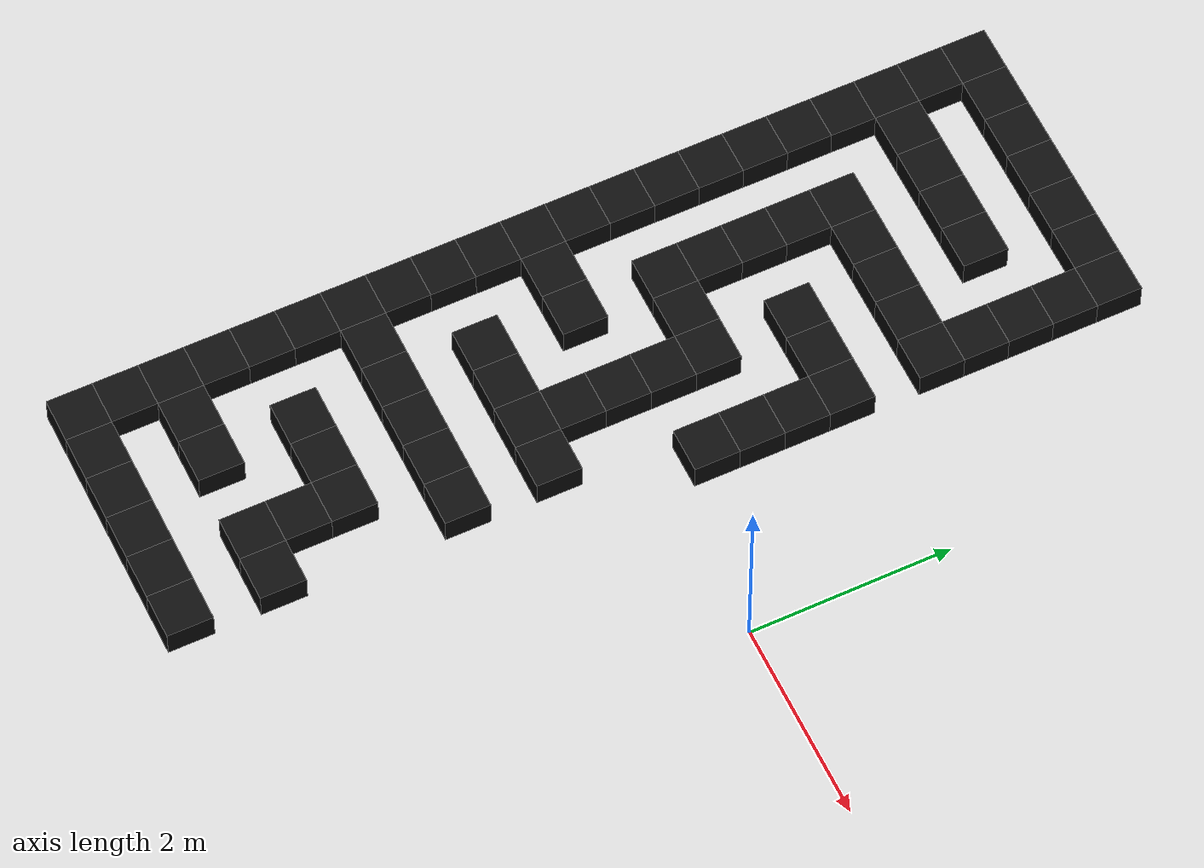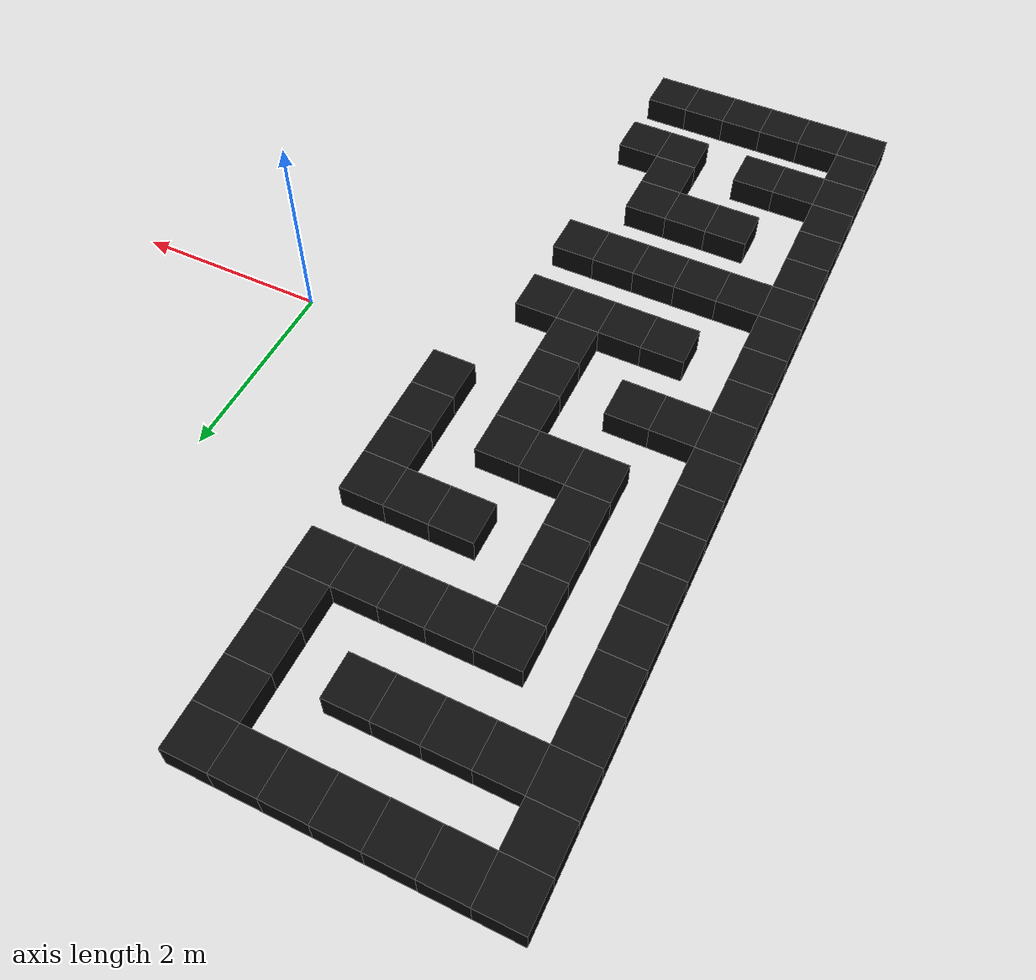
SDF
<sdf version="1.9">
 <world name="complex_maze_world">
  <model name="ground_plane">
   <static>true</static>
   <link name="link">
    <collision name="collision">
     <geometry><plane><normal>0 0 1</normal><size>30 30</size></plane></geometry>
    </collision>
    <visual name="visual">
     <geometry><plane><normal>0 0 1</normal><size>30 30</size></plane></geometry>
     <material><ambient>0.82 0.82 0.82 1</ambient><diffuse>0.82 0.82 0.82 1</diffuse></material>
    </visual>
   </link>
  </model>
  <model name="wall_0">
   <static>true</static>
   <pose>-4.500 4.500 0.140 0 0 0</pose>
   <link name="link">
    <collision name="collision"><geometry><box><size>0.450 0.450 0.280</size></box></geometry></collision>
    <visual name="visual">
     <geometry><box><size>0.450 0.450 0.280</size></box></geometry>
     <material><ambient>0.05 0.05 0.05 1</ambient><diffuse>0.05 0.05 0.05 1</diffuse></material>
    </visual>
   </link>
  </model>
  <model name="wall_1">
   <static>true</static>
   <pose>-4.050 4.500 0.140 0 0 0</pose>
   <link name="link">
    <collision name="collision"><geometry><box><size>0.450 0.450 0.280</size></box></geometry></collision>
    <visual name="visual">
     <geometry><box><size>0.450 0.450 0.280</size></box></geometry>
     <material><ambient>0.05 0.05 0.05 1</ambient><diffuse>0.05 0.05 0.05 1</diffuse></material>
    </visual>
   </link>
  </model>
  <model name="wall_2">
   <static>true</static>
   <pose>-3.600 4.500 0.140 0 0 0</pose>
   <link name="link">
    <collision name="collision"><geometry><box><size>0.450 0.450 0.280</size></box></geometry></collision>
    <visual name="visual">
     <geometry><box><size>0.450 0.450 0.280</size></box></geometry>
     <material><ambient>0.05 0.05 0.05 1</ambient><diffuse>0.05 0.05 0.05 1</diffuse></material>
    </visual>
   </link>
  </model>
  <model name="wall_3">
   <static>true</static>
   <pose>-3.150 4.500 0.140 0 0 0</pose>
   <link name="link">
    <collision name="collision"><geometry><box><size>0.450 0.450 0.280</size></box></geometry></collision>
    <visual name="visual">
     <geometry><box><size>0.450 0.450 0.280</size></box></geometry>
     <material><ambient>0.05 0.05 0.05 1</ambient><diffuse>0.05 0.05 0.05 1</diffuse></material>
    </visual>
   </link>
  </model>
  <model name="wall_4">
   <static>true</static>
   <pose>-2.700 4.500 0.140 0 0 0</pose>
   <link name="link">
    <collision name="collision"><geometry><box><size>0.450 0.450 0.280</size></box></geometry></collision>
    <visual name="visual">
     <geometry><box><size>0.450 0.450 0.280</size></box></geometry>
     <material><ambient>0.05 0.05 0.05 1</ambient><diffuse>0.05 0.05 0.05 1</diffuse></material>
    </visual>
   </link>
  </model>
  <model name="wall_5">
   <static>true</static>
   <pose>-2.250 4.500 0.140 0 0 0</pose>
   <link name="link">
    <collision name="collision"><geometry><box><size>0.450 0.450 0.280</size></box></geometry></collision>
    <visual name="visual">
     <geometry><box><size>0.450 0.450 0.280</size></box></geometry>
     <material><ambient>0.05 0.05 0.05 1</ambient><diffuse>0.05 0.05 0.05 1</diffuse></material>
    </visual>
   </link>
  </model>
  <model name="wall_6">
   <static>true</static>
   <pose>-1.800 4.500 0.140 0 0 0</pose>
   <link name="link">
    <collision name="collision"><geometry><box><size>0.450 0.450 0.280</size></box></geometry></collision>
    <visual name="visual">
     <geometry><box><size>0.450 0.450 0.280</size></box></geometry>
     <material><ambient>0.05 0.05 0.05 1</ambient><diffuse>0.05 0.05 0.05 1</diffuse></material>
    </visual>
   </link>
  </model>
  <model name="wall_21">
   <static>true</static>
   <pose>-4.500 4.050 0.140 0 0 0</pose>
   <link name="link">
    <collision name="collision"><geometry><box><size>0.450 0.450 0.280</size></box></geometry></collision>
    <visual name="visual">
     <geometry><box><size>0.450 0.450 0.280</size></box></geometry>
     <material><ambient>0.05 0.05 0.05 1</ambient><diffuse>0.05 0.05 0.05 1</diffuse></material>
    </visual>
   </link>
  </model>
  <model name="wall_22">
   <static>true</static>
   <pose>-1.800 4.050 0.140 0 0 0</pose>
   <link name="link">
    <collision name="collision"><geometry><box><size>0.450 0.450 0.280</size></box></geometry></collision>
    <visual name="visual">
     <geometry><box><size>0.450 0.450 0.280</size></box></geometry>
     <material><ambient>0.05 0.05 0.05 1</ambient><diffuse>0.05 0.05 0.05 1</diffuse></material>
    </visual>
   </link>
  </model>
  <model name="wall_24">
   <static>true</static>
   <pose>-4.500 3.600 0.140 0 0 0</pose>
   <link name="link">
    <collision name="collision"><geometry><box><size>0.450 0.450 0.280</size></box></geometry></collision>
    <visual name="visual">
     <geometry><box><size>0.450 0.450 0.280</size></box></geometry>
     <material><ambient>0.05 0.05 0.05 1</ambient><diffuse>0.05 0.05 0.05 1</diffuse></material>
    </visual>
   </link>
  </model>
  <model name="wall_25">
   <static>true</static>
   <pose>-4.050 3.600 0.140 0 0 0</pose>
   <link name="link">
    <collision name="collision"><geometry><box><size>0.450 0.450 0.280</size></box></geometry></collision>
    <visual name="visual">
     <geometry><box><size>0.450 0.450 0.280</size></box></geometry>
     <material><ambient>0.05 0.05 0.05 1</ambient><diffuse>0.05 0.05 0.05 1</diffuse></material>
    </visual>
   </link>
  </model>
  <model name="wall_26">
   <static>true</static>
   <pose>-3.600 3.600 0.140 0 0 0</pose>
   <link name="link">
    <collision name="collision"><geometry><box><size>0.450 0.450 0.280</size></box></geometry></collision>
    <visual name="visual">
     <geometry><box><size>0.450 0.450 0.280</size></box></geometry>
     <material><ambient>0.05 0.05 0.05 1</ambient><diffuse>0.05 0.05 0.05 1</diffuse></material>
    </visual>
   </link>
  </model>
  <model name="wall_27">
   <static>true</static>
   <pose>-3.150 3.600 0.140 0 0 0</pose>
   <link name="link">
    <collision name="collision"><geometry><box><size>0.450 0.450 0.280</size></box></geometry></collision>
    <visual name="visual">
     <geometry><box><size>0.450 0.450 0.280</size></box></geometry>
     <material><ambient>0.05 0.05 0.05 1</ambient><diffuse>0.05 0.05 0.05 1</diffuse></material>
    </visual>
   </link>
  </model>
  <model name="wall_28">
   <static>true</static>
   <pose>-2.700 3.600 0.140 0 0 0</pose>
   <link name="link">
    <collision name="collision"><geometry><box><size>0.450 0.450 0.280</size></box></geometry></collision>
    <visual name="visual">
     <geometry><box><size>0.450 0.450 0.280</size></box></geometry>
     <material><ambient>0.05 0.05 0.05 1</ambient><diffuse>0.05 0.05 0.05 1</diffuse></material>
    </visual>
   </link>
  </model>
  <model name="wall_29">
   <static>true</static>
   <pose>-1.800 3.600 0.140 0 0 0</pose>
   <link name="link">
    <collision name="collision"><geometry><box><size>0.450 0.450 0.280</size></box></geometry></collision>
    <visual name="visual">
     <geometry><box><size>0.450 0.450 0.280</size></box></geometry>
     <material><ambient>0.05 0.05 0.05 1</ambient><diffuse>0.05 0.05 0.05 1</diffuse></material>
    </visual>
   </link>
  </model>
  <model name="wall_41">
   <static>true</static>
   <pose>-4.500 3.150 0.140 0 0 0</pose>
   <link name="link">
    <collision name="collision"><geometry><box><size>0.450 0.450 0.280</size></box></geometry></collision>
    <visual name="visual">
     <geometry><box><size>0.450 0.450 0.280</size></box></geometry>
     <material><ambient>0.05 0.05 0.05 1</ambient><diffuse>0.05 0.05 0.05 1</diffuse></material>
    </visual>
   </link>
  </model>
  <model name="wall_42">
   <static>true</static>
   <pose>-1.800 3.150 0.140 0 0 0</pose>
   <link name="link">
    <collision name="collision"><geometry><box><size>0.450 0.450 0.280</size></box></geometry></collision>
    <visual name="visual">
     <geometry><box><size>0.450 0.450 0.280</size></box></geometry>
     <material><ambient>0.05 0.05 0.05 1</ambient><diffuse>0.05 0.05 0.05 1</diffuse></material>
    </visual>
   </link>
  </model>
  <model name="wall_46">
   <static>true</static>
   <pose>-4.500 2.700 0.140 0 0 0</pose>
   <link name="link">
    <collision name="collision"><geometry><box><size>0.450 0.450 0.280</size></box></geometry></collision>
    <visual name="visual">
     <geometry><box><size>0.450 0.450 0.280</size></box></geometry>
     <material><ambient>0.05 0.05 0.05 1</ambient><diffuse>0.05 0.05 0.05 1</diffuse></material>
    </visual>
   </link>
  </model>
  <model name="wall_47">
   <static>true</static>
   <pose>-3.600 2.700 0.140 0 0 0</pose>
   <link name="link">
    <collision name="collision"><geometry><box><size>0.450 0.450 0.280</size></box></geometry></collision>
    <visual name="visual">
     <geometry><box><size>0.450 0.450 0.280</size></box></geometry>
     <material><ambient>0.05 0.05 0.05 1</ambient><diffuse>0.05 0.05 0.05 1</diffuse></material>
    </visual>
   </link>
  </model>
  <model name="wall_48">
   <static>true</static>
   <pose>-3.150 2.700 0.140 0 0 0</pose>
   <link name="link">
    <collision name="collision"><geometry><box><size>0.450 0.450 0.280</size></box></geometry></collision>
    <visual name="visual">
     <geometry><box><size>0.450 0.450 0.280</size></box></geometry>
     <material><ambient>0.05 0.05 0.05 1</ambient><diffuse>0.05 0.05 0.05 1</diffuse></material>
    </visual>
   </link>
  </model>
  <model name="wall_49">
   <static>true</static>
   <pose>-2.700 2.700 0.140 0 0 0</pose>
   <link name="link">
    <collision name="collision"><geometry><box><size>0.450 0.450 0.280</size></box></geometry></collision>
    <visual name="visual">
     <geometry><box><size>0.450 0.450 0.280</size></box></geometry>
     <material><ambient>0.05 0.05 0.05 1</ambient><diffuse>0.05 0.05 0.05 1</diffuse></material>
    </visual>
   </link>
  </model>
  <model name="wall_50">
   <static>true</static>
   <pose>-2.250 2.700 0.140 0 0 0</pose>
   <link name="link">
    <collision name="collision"><geometry><box><size>0.450 0.450 0.280</size></box></geometry></collision>
    <visual name="visual">
     <geometry><box><size>0.450 0.450 0.280</size></box></geometry>
     <material><ambient>0.05 0.05 0.05 1</ambient><diffuse>0.05 0.05 0.05 1</diffuse></material>
    </visual>
   </link>
  </model>
  <model name="wall_51">
   <static>true</static>
   <pose>-1.800 2.700 0.140 0 0 0</pose>
   <link name="link">
    <collision name="collision"><geometry><box><size>0.450 0.450 0.280</size></box></geometry></collision>
    <visual name="visual">
     <geometry><box><size>0.450 0.450 0.280</size></box></geometry>
     <material><ambient>0.05 0.05 0.05 1</ambient><diffuse>0.05 0.05 0.05 1</diffuse></material>
    </visual>
   </link>
  </model>
  <model name="wall_61">
   <static>true</static>
   <pose>-4.500 2.250 0.140 0 0 0</pose>
   <link name="link">
    <collision name="collision"><geometry><box><size>0.450 0.450 0.280</size></box></geometry></collision>
    <visual name="visual">
     <geometry><box><size>0.450 0.450 0.280</size></box></geometry>
     <material><ambient>0.05 0.05 0.05 1</ambient><diffuse>0.05 0.05 0.05 1</diffuse></material>
    </visual>
   </link>
  </model>
  <model name="wall_62">
   <static>true</static>
   <pose>-3.600 2.250 0.140 0 0 0</pose>
   <link name="link">
    <collision name="collision"><geometry><box><size>0.450 0.450 0.280</size></box></geometry></collision>
    <visual name="visual">
     <geometry><box><size>0.450 0.450 0.280</size></box></geometry>
     <material><ambient>0.05 0.05 0.05 1</ambient><diffuse>0.05 0.05 0.05 1</diffuse></material>
    </visual>
   </link>
  </model>
  <model name="wall_68">
   <static>true</static>
   <pose>-4.500 1.800 0.140 0 0 0</pose>
   <link name="link">
    <collision name="collision"><geometry><box><size>0.450 0.450 0.280</size></box></geometry></collision>
    <visual name="visual">
     <geometry><box><size>0.450 0.450 0.280</size></box></geometry>
     <material><ambient>0.05 0.05 0.05 1</ambient><diffuse>0.05 0.05 0.05 1</diffuse></material>
    </visual>
   </link>
  </model>
  <model name="wall_69">
   <static>true</static>
   <pose>-3.600 1.800 0.140 0 0 0</pose>
   <link name="link">
    <collision name="collision"><geometry><box><size>0.450 0.450 0.280</size></box></geometry></collision>
    <visual name="visual">
     <geometry><box><size>0.450 0.450 0.280</size></box></geometry>
     <material><ambient>0.05 0.05 0.05 1</ambient><diffuse>0.05 0.05 0.05 1</diffuse></material>
    </visual>
   </link>
  </model>
  <model name="wall_70">
   <static>true</static>
   <pose>-2.700 1.800 0.140 0 0 0</pose>
   <link name="link">
    <collision name="collision"><geometry><box><size>0.450 0.450 0.280</size></box></geometry></collision>
    <visual name="visual">
     <geometry><box><size>0.450 0.450 0.280</size></box></geometry>
     <material><ambient>0.05 0.05 0.05 1</ambient><diffuse>0.05 0.05 0.05 1</diffuse></material>
    </visual>
   </link>
  </model>
  <model name="wall_71">
   <static>true</static>
   <pose>-2.250 1.800 0.140 0 0 0</pose>
   <link name="link">
    <collision name="collision"><geometry><box><size>0.450 0.450 0.280</size></box></geometry></collision>
    <visual name="visual">
     <geometry><box><size>0.450 0.450 0.280</size></box></geometry>
     <material><ambient>0.05 0.05 0.05 1</ambient><diffuse>0.05 0.05 0.05 1</diffuse></material>
    </visual>
   </link>
  </model>
  <model name="wall_72">
   <static>true</static>
   <pose>-1.800 1.800 0.140 0 0 0</pose>
   <link name="link">
    <collision name="collision"><geometry><box><size>0.450 0.450 0.280</size></box></geometry></collision>
    <visual name="visual">
     <geometry><box><size>0.450 0.450 0.280</size></box></geometry>
     <material><ambient>0.05 0.05 0.05 1</ambient><diffuse>0.05 0.05 0.05 1</diffuse></material>
    </visual>
   </link>
  </model>
  <model name="wall_80">
   <static>true</static>
   <pose>-4.500 1.350 0.140 0 0 0</pose>
   <link name="link">
    <collision name="collision"><geometry><box><size>0.450 0.450 0.280</size></box></geometry></collision>
    <visual name="visual">
     <geometry><box><size>0.450 0.450 0.280</size></box></geometry>
     <material><ambient>0.05 0.05 0.05 1</ambient><diffuse>0.05 0.05 0.05 1</diffuse></material>
    </visual>
   </link>
  </model>
  <model name="wall_81">
   <static>true</static>
   <pose>-3.600 1.350 0.140 0 0 0</pose>
   <link name="link">
    <collision name="collision"><geometry><box><size>0.450 0.450 0.280</size></box></geometry></collision>
    <visual name="visual">
     <geometry><box><size>0.450 0.450 0.280</size></box></geometry>
     <material><ambient>0.05 0.05 0.05 1</ambient><diffuse>0.05 0.05 0.05 1</diffuse></material>
    </visual>
   </link>
  </model>
  <model name="wall_82">
   <static>true</static>
   <pose>-1.800 1.350 0.140 0 0 0</pose>
   <link name="link">
    <collision name="collision"><geometry><box><size>0.450 0.450 0.280</size></box></geometry></collision>
    <visual name="visual">
     <geometry><box><size>0.450 0.450 0.280</size></box></geometry>
     <material><ambient>0.05 0.05 0.05 1</ambient><diffuse>0.05 0.05 0.05 1</diffuse></material>
    </visual>
   </link>
  </model>
  <model name="wall_85">
   <static>true</static>
   <pose>-4.500 0.900 0.140 0 0 0</pose>
   <link name="link">
    <collision name="collision"><geometry><box><size>0.450 0.450 0.280</size></box></geometry></collision>
    <visual name="visual">
     <geometry><box><size>0.450 0.450 0.280</size></box></geometry>
     <material><ambient>0.05 0.05 0.05 1</ambient><diffuse>0.05 0.05 0.05 1</diffuse></material>
    </visual>
   </link>
  </model>
  <model name="wall_86">
   <static>true</static>
   <pose>-3.600 0.900 0.140 0 0 0</pose>
   <link name="link">
    <collision name="collision"><geometry><box><size>0.450 0.450 0.280</size></box></geometry></collision>
    <visual name="visual">
     <geometry><box><size>0.450 0.450 0.280</size></box></geometry>
     <material><ambient>0.05 0.05 0.05 1</ambient><diffuse>0.05 0.05 0.05 1</diffuse></material>
    </visual>
   </link>
  </model>
  <model name="wall_87">
   <static>true</static>
   <pose>-3.150 0.900 0.140 0 0 0</pose>
   <link name="link">
    <collision name="collision"><geometry><box><size>0.450 0.450 0.280</size></box></geometry></collision>
    <visual name="visual">
     <geometry><box><size>0.450 0.450 0.280</size></box></geometry>
     <material><ambient>0.05 0.05 0.05 1</ambient><diffuse>0.05 0.05 0.05 1</diffuse></material>
    </visual>
   </link>
  </model>
  <model name="wall_88">
   <static>true</static>
   <pose>-2.700 0.900 0.140 0 0 0</pose>
   <link name="link">
    <collision name="collision"><geometry><box><size>0.450 0.450 0.280</size></box></geometry></collision>
    <visual name="visual">
     <geometry><box><size>0.450 0.450 0.280</size></box></geometry>
     <material><ambient>0.05 0.05 0.05 1</ambient><diffuse>0.05 0.05 0.05 1</diffuse></material>
    </visual>
   </link>
  </model>
  <model name="wall_89">
   <static>true</static>
   <pose>-1.800 0.900 0.140 0 0 0</pose>
   <link name="link">
    <collision name="collision"><geometry><box><size>0.450 0.450 0.280</size></box></geometry></collision>
    <visual name="visual">
     <geometry><box><size>0.450 0.450 0.280</size></box></geometry>
     <material><ambient>0.05 0.05 0.05 1</ambient><diffuse>0.05 0.05 0.05 1</diffuse></material>
    </visual>
   </link>
  </model>
  <model name="wall_101">
   <static>true</static>
   <pose>-4.500 0.450 0.140 0 0 0</pose>
   <link name="link">
    <collision name="collision"><geometry><box><size>0.450 0.450 0.280</size></box></geometry></collision>
    <visual name="visual">
     <geometry><box><size>0.450 0.450 0.280</size></box></geometry>
     <material><ambient>0.05 0.05 0.05 1</ambient><diffuse>0.05 0.05 0.05 1</diffuse></material>
    </visual>
   </link>
  </model>
  <model name="wall_102">
   <static>true</static>
   <pose>-2.700 0.450 0.140 0 0 0</pose>
   <link name="link">
    <collision name="collision"><geometry><box><size>0.450 0.450 0.280</size></box></geometry></collision>
    <visual name="visual">
     <geometry><box><size>0.450 0.450 0.280</size></box></geometry>
     <material><ambient>0.05 0.05 0.05 1</ambient><diffuse>0.05 0.05 0.05 1</diffuse></material>
    </visual>
   </link>
  </model>
  <model name="wall_103">
   <static>true</static>
   <pose>-1.800 0.450 0.140 0 0 0</pose>
   <link name="link">
    <collision name="collision"><geometry><box><size>0.450 0.450 0.280</size></box></geometry></collision>
    <visual name="visual">
     <geometry><box><size>0.450 0.450 0.280</size></box></geometry>
     <material><ambient>0.05 0.05 0.05 1</ambient><diffuse>0.05 0.05 0.05 1</diffuse></material>
    </visual>
   </link>
  </model>
  <model name="wall_107">
   <static>true</static>
   <pose>-4.500 0.000 0.140 0 0 0</pose>
   <link name="link">
    <collision name="collision"><geometry><box><size>0.450 0.450 0.280</size></box></geometry></collision>
    <visual name="visual">
     <geometry><box><size>0.450 0.450 0.280</size></box></geometry>
     <material><ambient>0.05 0.05 0.05 1</ambient><diffuse>0.05 0.05 0.05 1</diffuse></material>
    </visual>
   </link>
  </model>
  <model name="wall_108">
   <static>true</static>
   <pose>-4.050 0.000 0.140 0 0 0</pose>
   <link name="link">
    <collision name="collision"><geometry><box><size>0.450 0.450 0.280</size></box></geometry></collision>
    <visual name="visual">
     <geometry><box><size>0.450 0.450 0.280</size></box></geometry>
     <material><ambient>0.05 0.05 0.05 1</ambient><diffuse>0.05 0.05 0.05 1</diffuse></material>
    </visual>
   </link>
  </model>
  <model name="wall_109">
   <static>true</static>
   <pose>-3.600 0.000 0.140 0 0 0</pose>
   <link name="link">
    <collision name="collision"><geometry><box><size>0.450 0.450 0.280</size></box></geometry></collision>
    <visual name="visual">
     <geometry><box><size>0.450 0.450 0.280</size></box></geometry>
     <material><ambient>0.05 0.05 0.05 1</ambient><diffuse>0.05 0.05 0.05 1</diffuse></material>
    </visual>
   </link>
  </model>
  <model name="wall_110">
   <static>true</static>
   <pose>-2.700 0.000 0.140 0 0 0</pose>
   <link name="link">
    <collision name="collision"><geometry><box><size>0.450 0.450 0.280</size></box></geometry></collision>
    <visual name="visual">
     <geometry><box><size>0.450 0.450 0.280</size></box></geometry>
     <material><ambient>0.05 0.05 0.05 1</ambient><diffuse>0.05 0.05 0.05 1</diffuse></material>
    </visual>
   </link>
  </model>
  <model name="wall_123">
   <static>true</static>
   <pose>-4.500 -0.450 0.140 0 0 0</pose>
   <link name="link">
    <collision name="collision"><geometry><box><size>0.450 0.450 0.280</size></box></geometry></collision>
    <visual name="visual">
     <geometry><box><size>0.450 0.450 0.280</size></box></geometry>
     <material><ambient>0.05 0.05 0.05 1</ambient><diffuse>0.05 0.05 0.05 1</diffuse></material>
    </visual>
   </link>
  </model>
  <model name="wall_124">
   <static>true</static>
   <pose>-2.700 -0.450 0.140 0 0 0</pose>
   <link name="link">
    <collision name="collision"><geometry><box><size>0.450 0.450 0.280</size></box></geometry></collision>
    <visual name="visual">
     <geometry><box><size>0.450 0.450 0.280</size></box></geometry>
     <material><ambient>0.05 0.05 0.05 1</ambient><diffuse>0.05 0.05 0.05 1</diffuse></material>
    </visual>
   </link>
  </model>
  <model name="wall_129">
   <static>true</static>
   <pose>-4.500 -0.900 0.140 0 0 0</pose>
   <link name="link">
    <collision name="collision"><geometry><box><size>0.450 0.450 0.280</size></box></geometry></collision>
    <visual name="visual">
     <geometry><box><size>0.450 0.450 0.280</size></box></geometry>
     <material><ambient>0.05 0.05 0.05 1</ambient><diffuse>0.05 0.05 0.05 1</diffuse></material>
    </visual>
   </link>
  </model>
  <model name="wall_130">
   <static>true</static>
   <pose>-3.600 -0.900 0.140 0 0 0</pose>
   <link name="link">
    <collision name="collision"><geometry><box><size>0.450 0.450 0.280</size></box></geometry></collision>
    <visual name="visual">
     <geometry><box><size>0.450 0.450 0.280</size></box></geometry>
     <material><ambient>0.05 0.05 0.05 1</ambient><diffuse>0.05 0.05 0.05 1</diffuse></material>
    </visual>
   </link>
  </model>
  <model name="wall_131">
   <static>true</static>
   <pose>-3.150 -0.900 0.140 0 0 0</pose>
   <link name="link">
    <collision name="collision"><geometry><box><size>0.450 0.450 0.280</size></box></geometry></collision>
    <visual name="visual">
     <geometry><box><size>0.450 0.450 0.280</size></box></geometry>
     <material><ambient>0.05 0.05 0.05 1</ambient><diffuse>0.05 0.05 0.05 1</diffuse></material>
    </visual>
   </link>
  </model>
  <model name="wall_132">
   <static>true</static>
   <pose>-2.700 -0.900 0.140 0 0 0</pose>
   <link name="link">
    <collision name="collision"><geometry><box><size>0.450 0.450 0.280</size></box></geometry></collision>
    <visual name="visual">
     <geometry><box><size>0.450 0.450 0.280</size></box></geometry>
     <material><ambient>0.05 0.05 0.05 1</ambient><diffuse>0.05 0.05 0.05 1</diffuse></material>
    </visual>
   </link>
  </model>
  <model name="wall_133">
   <static>true</static>
   <pose>-2.250 -0.900 0.140 0 0 0</pose>
   <link name="link">
    <collision name="collision"><geometry><box><size>0.450 0.450 0.280</size></box></geometry></collision>
    <visual name="visual">
     <geometry><box><size>0.450 0.450 0.280</size></box></geometry>
     <material><ambient>0.05 0.05 0.05 1</ambient><diffuse>0.05 0.05 0.05 1</diffuse></material>
    </visual>
   </link>
  </model>
  <model name="wall_145">
   <static>true</static>
   <pose>-4.500 -1.350 0.140 0 0 0</pose>
   <link name="link">
    <collision name="collision"><geometry><box><size>0.450 0.450 0.280</size></box></geometry></collision>
    <visual name="visual">
     <geometry><box><size>0.450 0.450 0.280</size></box></geometry>
     <material><ambient>0.05 0.05 0.05 1</ambient><diffuse>0.05 0.05 0.05 1</diffuse></material>
    </visual>
   </link>
  </model>
  <model name="wall_150">
   <static>true</static>
   <pose>-4.500 -1.800 0.140 0 0 0</pose>
   <link name="link">
    <collision name="collision"><geometry><box><size>0.450 0.450 0.280</size></box></geometry></collision>
    <visual name="visual">
     <geometry><box><size>0.450 0.450 0.280</size></box></geometry>
     <material><ambient>0.05 0.05 0.05 1</ambient><diffuse>0.05 0.05 0.05 1</diffuse></material>
    </visual>
   </link>
  </model>
  <model name="wall_151">
   <static>true</static>
   <pose>-4.050 -1.800 0.140 0 0 0</pose>
   <link name="link">
    <collision name="collision"><geometry><box><size>0.450 0.450 0.280</size></box></geometry></collision>
    <visual name="visual">
     <geometry><box><size>0.450 0.450 0.280</size></box></geometry>
     <material><ambient>0.05 0.05 0.05 1</ambient><diffuse>0.05 0.05 0.05 1</diffuse></material>
    </visual>
   </link>
  </model>
  <model name="wall_152">
   <static>true</static>
   <pose>-3.600 -1.800 0.140 0 0 0</pose>
   <link name="link">
    <collision name="collision"><geometry><box><size>0.450 0.450 0.280</size></box></geometry></collision>
    <visual name="visual">
     <geometry><box><size>0.450 0.450 0.280</size></box></geometry>
     <material><ambient>0.05 0.05 0.05 1</ambient><diffuse>0.05 0.05 0.05 1</diffuse></material>
    </visual>
   </link>
  </model>
  <model name="wall_153">
   <static>true</static>
   <pose>-3.150 -1.800 0.140 0 0 0</pose>
   <link name="link">
    <collision name="collision"><geometry><box><size>0.450 0.450 0.280</size></box></geometry></collision>
    <visual name="visual">
     <geometry><box><size>0.450 0.450 0.280</size></box></geometry>
     <material><ambient>0.05 0.05 0.05 1</ambient><diffuse>0.05 0.05 0.05 1</diffuse></material>
    </visual>
   </link>
  </model>
  <model name="wall_154">
   <static>true</static>
   <pose>-2.700 -1.800 0.140 0 0 0</pose>
   <link name="link">
    <collision name="collision"><geometry><box><size>0.450 0.450 0.280</size></box></geometry></collision>
    <visual name="visual">
     <geometry><box><size>0.450 0.450 0.280</size></box></geometry>
     <material><ambient>0.05 0.05 0.05 1</ambient><diffuse>0.05 0.05 0.05 1</diffuse></material>
    </visual>
   </link>
  </model>
  <model name="wall_155">
   <static>true</static>
   <pose>-2.250 -1.800 0.140 0 0 0</pose>
   <link name="link">
    <collision name="collision"><geometry><box><size>0.450 0.450 0.280</size></box></geometry></collision>
    <visual name="visual">
     <geometry><box><size>0.450 0.450 0.280</size></box></geometry>
     <material><ambient>0.05 0.05 0.05 1</ambient><diffuse>0.05 0.05 0.05 1</diffuse></material>
    </visual>
   </link>
  </model>
  <model name="wall_168">
   <static>true</static>
   <pose>-4.500 -2.250 0.140 0 0 0</pose>
   <link name="link">
    <collision name="collision"><geometry><box><size>0.450 0.450 0.280</size></box></geometry></collision>
    <visual name="visual">
     <geometry><box><size>0.450 0.450 0.280</size></box></geometry>
     <material><ambient>0.05 0.05 0.05 1</ambient><diffuse>0.05 0.05 0.05 1</diffuse></material>
    </visual>
   </link>
  </model>
  <model name="wall_172">
   <static>true</static>
   <pose>-4.500 -2.700 0.140 0 0 0</pose>
   <link name="link">
    <collision name="collision"><geometry><box><size>0.450 0.450 0.280</size></box></geometry></collision>
    <visual name="visual">
     <geometry><box><size>0.450 0.450 0.280</size></box></geometry>
     <material><ambient>0.05 0.05 0.05 1</ambient><diffuse>0.05 0.05 0.05 1</diffuse></material>
    </visual>
   </link>
  </model>
  <model name="wall_173">
   <static>true</static>
   <pose>-3.600 -2.700 0.140 0 0 0</pose>
   <link name="link">
    <collision name="collision"><geometry><box><size>0.450 0.450 0.280</size></box></geometry></collision>
    <visual name="visual">
     <geometry><box><size>0.450 0.450 0.280</size></box></geometry>
     <material><ambient>0.05 0.05 0.05 1</ambient><diffuse>0.05 0.05 0.05 1</diffuse></material>
    </visual>
   </link>
  </model>
  <model name="wall_174">
   <static>true</static>
   <pose>-3.150 -2.700 0.140 0 0 0</pose>
   <link name="link">
    <collision name="collision"><geometry><box><size>0.450 0.450 0.280</size></box></geometry></collision>
    <visual name="visual">
     <geometry><box><size>0.450 0.450 0.280</size></box></geometry>
     <material><ambient>0.05 0.05 0.05 1</ambient><diffuse>0.05 0.05 0.05 1</diffuse></material>
    </visual>
   </link>
  </model>
  <model name="wall_175">
   <static>true</static>
   <pose>-2.700 -2.700 0.140 0 0 0</pose>
   <link name="link">
    <collision name="collision"><geometry><box><size>0.450 0.450 0.280</size></box></geometry></collision>
    <visual name="visual">
     <geometry><box><size>0.450 0.450 0.280</size></box></geometry>
     <material><ambient>0.05 0.05 0.05 1</ambient><diffuse>0.05 0.05 0.05 1</diffuse></material>
    </visual>
   </link>
  </model>
  <model name="wall_189">
   <static>true</static>
   <pose>-4.500 -3.150 0.140 0 0 0</pose>
   <link name="link">
    <collision name="collision"><geometry><box><size>0.450 0.450 0.280</size></box></geometry></collision>
    <visual name="visual">
     <geometry><box><size>0.450 0.450 0.280</size></box></geometry>
     <material><ambient>0.05 0.05 0.05 1</ambient><diffuse>0.05 0.05 0.05 1</diffuse></material>
    </visual>
   </link>
  </model>
  <model name="wall_190">
   <static>true</static>
   <pose>-2.700 -3.150 0.140 0 0 0</pose>
   <link name="link">
    <collision name="collision"><geometry><box><size>0.450 0.450 0.280</size></box></geometry></collision>
    <visual name="visual">
     <geometry><box><size>0.450 0.450 0.280</size></box></geometry>
     <material><ambient>0.05 0.05 0.05 1</ambient><diffuse>0.05 0.05 0.05 1</diffuse></material>
    </visual>
   </link>
  </model>
  <model name="wall_194">
   <static>true</static>
   <pose>-4.500 -3.600 0.140 0 0 0</pose>
   <link name="link">
    <collision name="collision"><geometry><box><size>0.450 0.450 0.280</size></box></geometry></collision>
    <visual name="visual">
     <geometry><box><size>0.450 0.450 0.280</size></box></geometry>
     <material><ambient>0.05 0.05 0.05 1</ambient><diffuse>0.05 0.05 0.05 1</diffuse></material>
    </visual>
   </link>
  </model>
  <model name="wall_195">
   <static>true</static>
   <pose>-4.050 -3.600 0.140 0 0 0</pose>
   <link name="link">
    <collision name="collision"><geometry><box><size>0.450 0.450 0.280</size></box></geometry></collision>
    <visual name="visual">
     <geometry><box><size>0.450 0.450 0.280</size></box></geometry>
     <material><ambient>0.05 0.05 0.05 1</ambient><diffuse>0.05 0.05 0.05 1</diffuse></material>
    </visual>
   </link>
  </model>
  <model name="wall_196">
   <static>true</static>
   <pose>-3.600 -3.600 0.140 0 0 0</pose>
   <link name="link">
    <collision name="collision"><geometry><box><size>0.450 0.450 0.280</size></box></geometry></collision>
    <visual name="visual">
     <geometry><box><size>0.450 0.450 0.280</size></box></geometry>
     <material><ambient>0.05 0.05 0.05 1</ambient><diffuse>0.05 0.05 0.05 1</diffuse></material>
    </visual>
   </link>
  </model>
  <model name="wall_197">
   <static>true</static>
   <pose>-2.700 -3.600 0.140 0 0 0</pose>
   <link name="link">
    <collision name="collision"><geometry><box><size>0.450 0.450 0.280</size></box></geometry></collision>
    <visual name="visual">
     <geometry><box><size>0.450 0.450 0.280</size></box></geometry>
     <material><ambient>0.05 0.05 0.05 1</ambient><diffuse>0.05 0.05 0.05 1</diffuse></material>
    </visual>
   </link>
  </model>
  <model name="wall_198">
   <static>true</static>
   <pose>-2.250 -3.600 0.140 0 0 0</pose>
   <link name="link">
    <collision name="collision"><geometry><box><size>0.450 0.450 0.280</size></box></geometry></collision>
    <visual name="visual">
     <geometry><box><size>0.450 0.450 0.280</size></box></geometry>
     <material><ambient>0.05 0.05 0.05 1</ambient><diffuse>0.05 0.05 0.05 1</diffuse></material>
    </visual>
   </link>
  </model>
  <model name="wall_210">
   <static>true</static>
   <pose>-4.500 -4.050 0.140 0 0 0</pose>
   <link name="link">
    <collision name="collision"><geometry><box><size>0.450 0.450 0.280</size></box></geometry></collision>
    <visual name="visual">
     <geometry><box><size>0.450 0.450 0.280</size></box></geometry>
     <material><ambient>0.05 0.05 0.05 1</ambient><diffuse>0.05 0.05 0.05 1</diffuse></material>
    </visual>
   </link>
  </model>
  <model name="wall_213">
   <static>true</static>
   <pose>-4.500 -4.500 0.140 0 0 0</pose>
   <link name="link">
    <collision name="collision"><geometry><box><size>0.450 0.450 0.280</size></box></geometry></collision>
    <visual name="visual">
     <geometry><box><size>0.450 0.450 0.280</size></box></geometry>
     <material><ambient>0.05 0.05 0.05 1</ambient><diffuse>0.05 0.05 0.05 1</diffuse></material>
    </visual>
   </link>
  </model>
  <model name="wall_214">
   <static>true</static>
   <pose>-4.050 -4.500 0.140 0 0 0</pose>
   <link name="link">
    <collision name="collision"><geometry><box><size>0.450 0.450 0.280</size></box></geometry></collision>
    <visual name="visual">
     <geometry><box><size>0.450 0.450 0.280</size></box></geometry>
     <material><ambient>0.05 0.05 0.05 1</ambient><diffuse>0.05 0.05 0.05 1</diffuse></material>
    </visual>
   </link>
  </model>
  <model name="wall_215">
   <static>true</static>
   <pose>-3.600 -4.500 0.140 0 0 0</pose>
   <link name="link">
    <collision name="collision"><geometry><box><size>0.450 0.450 0.280</size></box></geometry></collision>
    <visual name="visual">
     <geometry><box><size>0.450 0.450 0.280</size></box></geometry>
     <material><ambient>0.05 0.05 0.05 1</ambient><diffuse>0.05 0.05 0.05 1</diffuse></material>
    </visual>
   </link>
  </model>
  <model name="wall_216">
   <static>true</static>
   <pose>-3.150 -4.500 0.140 0 0 0</pose>
   <link name="link">
    <collision name="collision"><geometry><box><size>0.450 0.450 0.280</size></box></geometry></collision>
    <visual name="visual">
     <geometry><box><size>0.450 0.450 0.280</size></box></geometry>
     <material><ambient>0.05 0.05 0.05 1</ambient><diffuse>0.05 0.05 0.05 1</diffuse></material>
    </visual>
   </link>
  </model>
  <model name="wall_217">
   <static>true</static>
   <pose>-2.700 -4.500 0.140 0 0 0</pose>
   <link name="link">
    <collision name="collision"><geometry><box><size>0.450 0.450 0.280</size></box></geometry></collision>
    <visual name="visual">
     <geometry><box><size>0.450 0.450 0.280</size></box></geometry>
     <material><ambient>0.05 0.05 0.05 1</ambient><diffuse>0.05 0.05 0.05 1</diffuse></material>
    </visual>
   </link>
  </model>
  <model name="wall_218">
   <static>true</static>
   <pose>-2.250 -4.500 0.140 0 0 0</pose>
   <link name="link">
    <collision name="collision"><geometry><box><size>0.450 0.450 0.280</size></box></geometry></collision>
    <visual name="visual">
     <geometry><box><size>0.450 0.450 0.280</size></box></geometry>
     <material><ambient>0.05 0.05 0.05 1</ambient><diffuse>0.05 0.05 0.05 1</diffuse></material>
    </visual>
   </link>
  </model>
 </world>
</sdf>
